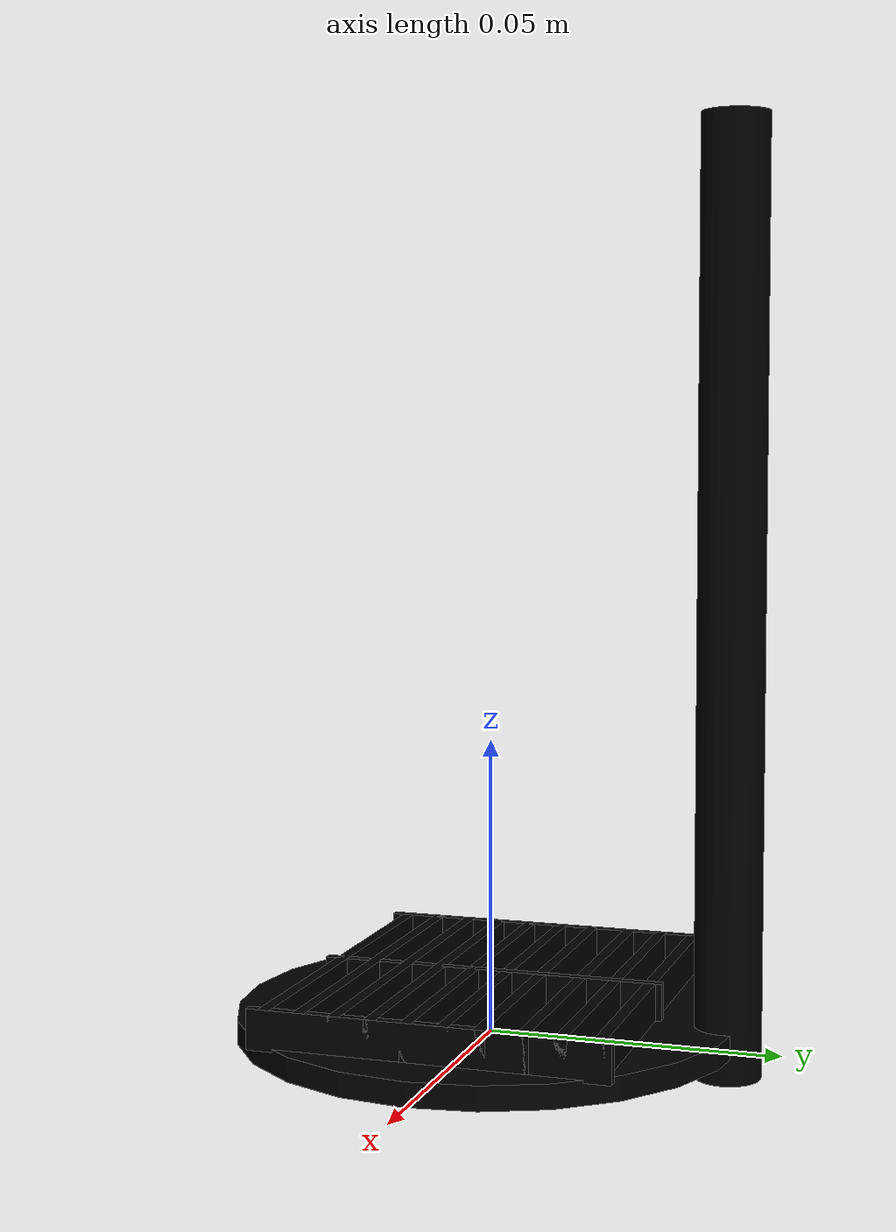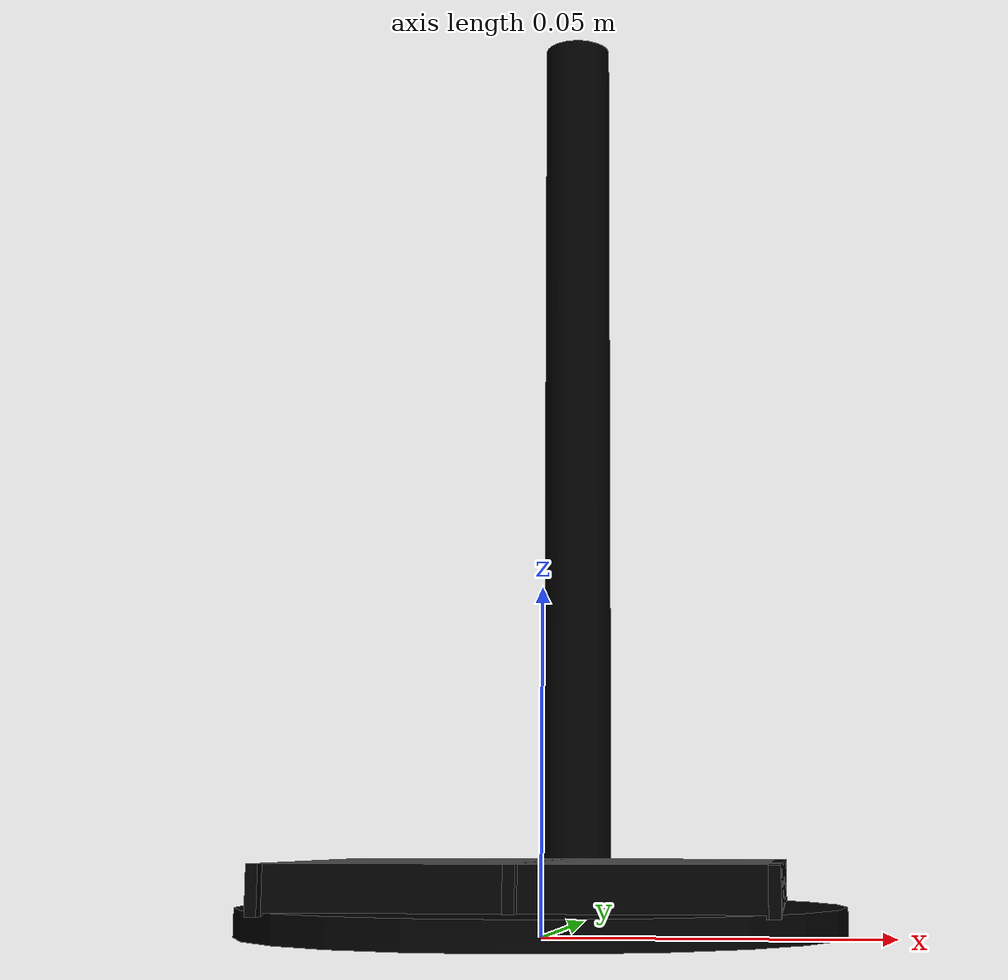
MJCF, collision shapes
<mujoco model="glassSheet">

  <compiler angle="radian" meshdir="../../assets" />

  <asset>

    <mesh name="glass_sheet_mesh" file="glassSheet/base.obj" scale="0.080000 0.080000 0.100000" />
    <texture name="glass_diffuse" type="2d" file="../../assets/glassSheet/texture_diffuse.png" />

    <material name="glass_material" texture="glass_diffuse" rgba="1 0 0 1" />
  </asset>

  <worldbody>
    <body name="glass_sheet" euler="1.5708 0 0">

      <geom name="glass_sheet_visual" type="mesh" mesh="glass_sheet_mesh" material="glass_material" contype="0" rgba="0.9 0.9 0.9 1" conaffinity="0" />

      <geom name="glass_sheet_collision_1" type="cylinder" size="0.005600 0.078500" pos="0.000000 0.074400 -0.041000" euler="1.5708 0 0" contype="1" conaffinity="1" friction="0.6 0.2 0.001" rgba="0 0 0 0" />
      <geom name="glass_sheet_collision_2" type="cylinder" size="0.043200 0.002000" pos="0.000000 0.002400 0.000000" euler="1.5708 0 0" contype="1" conaffinity="1" friction="0.6 0.2 0.001" rgba="0 0 0 0" />

      <geom name="ring_1" type="box" size="0.034400 0.003360 0.001000" pos="0.000000 0.007280 0.003000" contype="1" conaffinity="1" rgba="0 0 0 0" />
      <geom name="ring_2" type="box" size="0.034400 0.003360 0.001000" pos="0.000000 0.007280 0.009000" contype="1" conaffinity="1" rgba="0 0 0 0" />
      <geom name="ring_3" type="box" size="0.034400 0.003360 0.001000" pos="0.000000 0.007280 0.015000" contype="1" conaffinity="1" rgba="0 0 0 0" />
      <geom name="ring_4" type="box" size="0.034400 0.003360 0.001000" pos="0.000000 0.007280 0.021000" contype="1" conaffinity="1" rgba="0 0 0 0" />
      <geom name="ring_5" type="box" size="0.034400 0.003360 0.001000" pos="0.000000 0.007280 0.027000" contype="1" conaffinity="1" rgba="0 0 0 0" />
      <geom name="ring_6" type="box" size="0.034400 0.003360 0.001000" pos="0.000000 0.007280 -0.028000" contype="1" conaffinity="1" rgba="0 0 0 0" />
      <geom name="ring_7" type="box" size="0.034400 0.003360 0.001000" pos="0.000000 0.007280 -0.009000" contype="1" conaffinity="1" rgba="0 0 0 0" />
      <geom name="ring_8" type="box" size="0.034400 0.003360 0.001000" pos="0.000000 0.007280 -0.003000" contype="1" conaffinity="1" rgba="0 0 0 0" />
      <geom name="ring_9" type="box" size="0.034400 0.003360 0.001000" pos="0.000000 0.007280 -0.016000" contype="1" conaffinity="1" rgba="0 0 0 0" />
      <geom name="ring_10" type="box" size="0.034400 0.003360 0.001000" pos="0.000000 0.007280 -0.022000" contype="1" conaffinity="1" rgba="0 0 0 0" />
      <geom name="ring_11" type="box" size="0.000800 0.003360 0.030000" pos="0.000000 0.007280 0.000000" contype="1" conaffinity="1" rgba="0 0 0 0" />
      <geom name="ring_12" type="box" size="0.000800 0.003360 0.030000" pos="0.033600 0.007280 0.000000" contype="1" conaffinity="1" rgba="0 0 0 0" />
      <geom name="ring_13" type="box" size="0.000800 0.003360 0.030000" pos="-0.033600 0.007280 0.000000" contype="1" conaffinity="1" rgba="0 0 0 0" />

    </body>
  </worldbody>
</mujoco>
